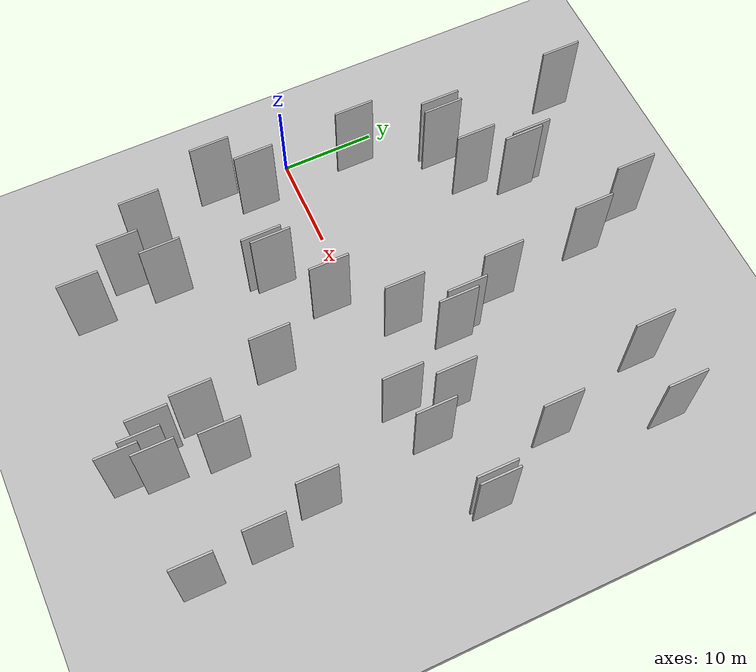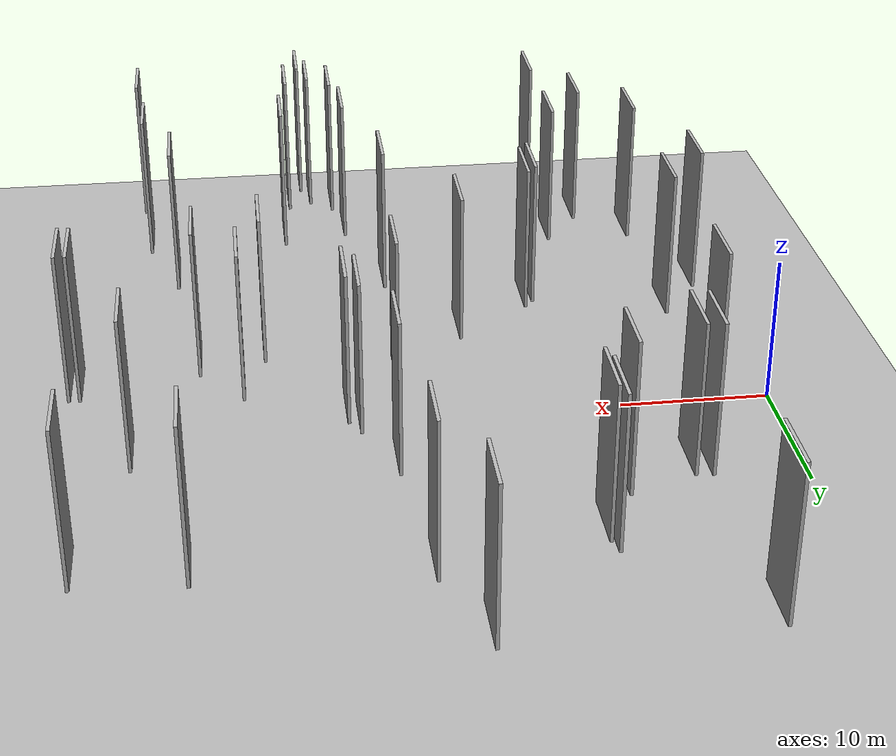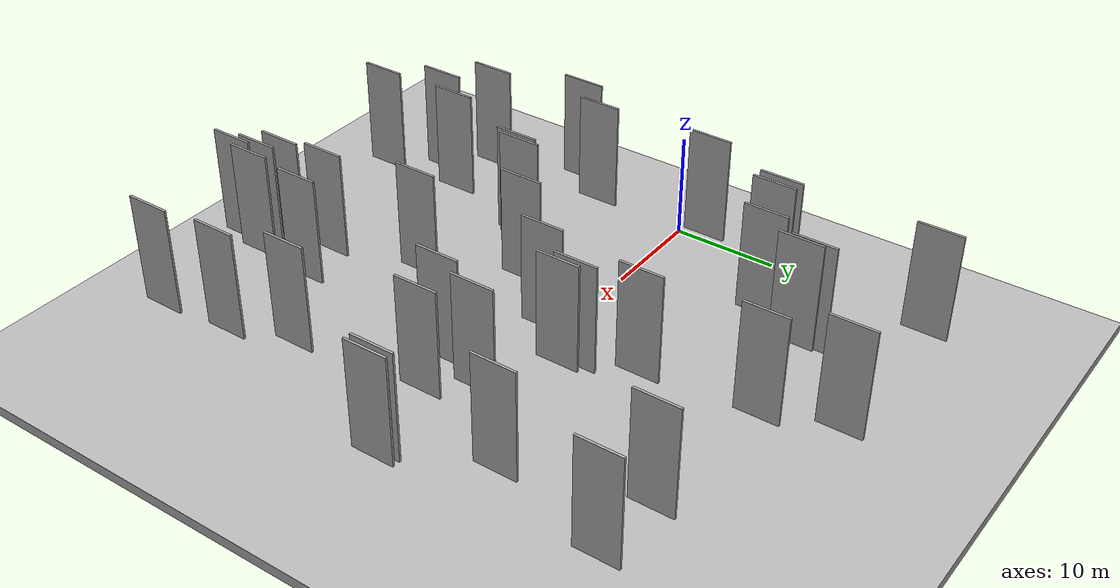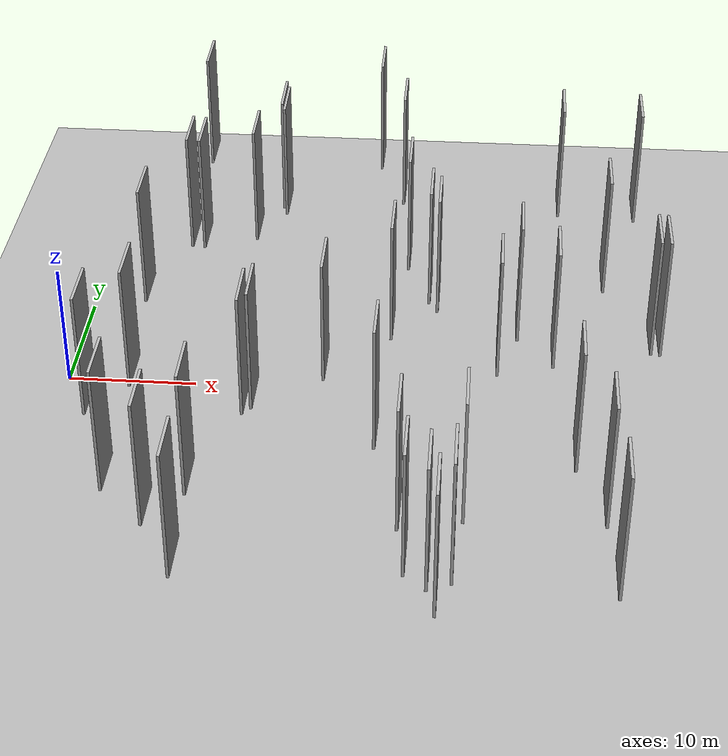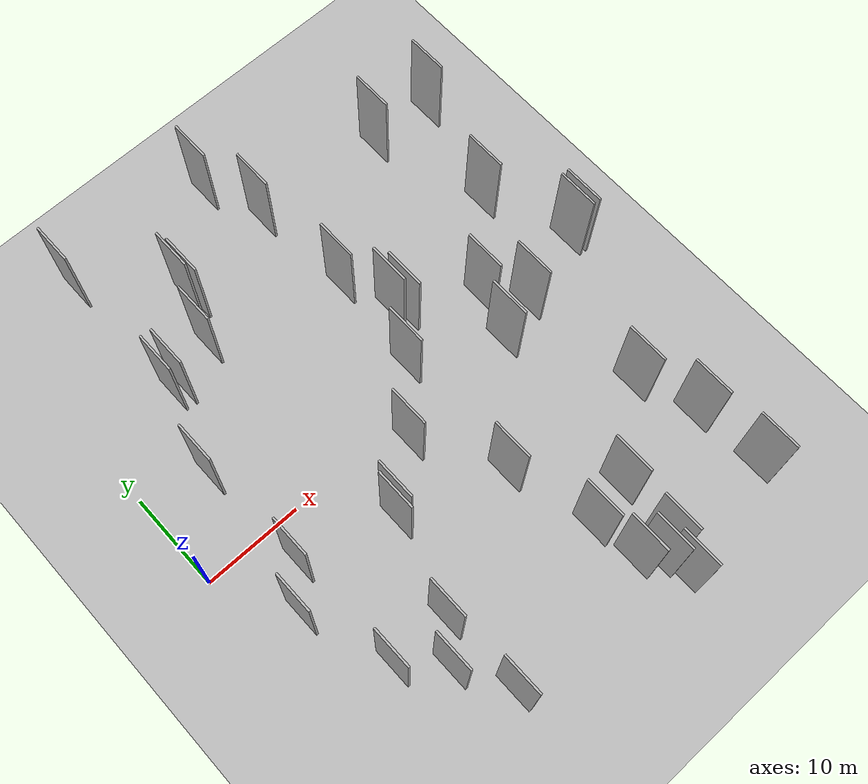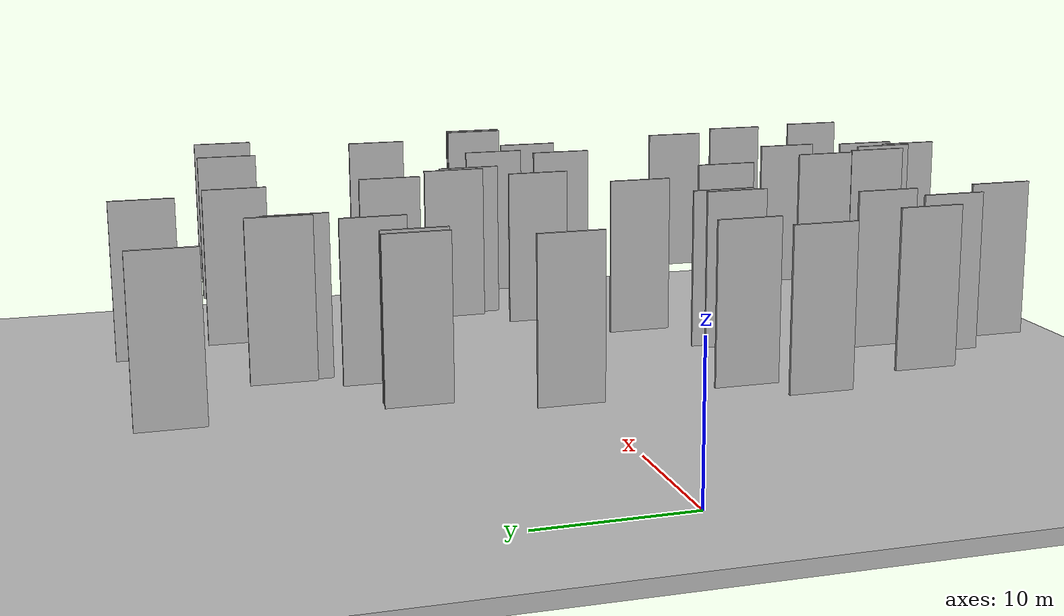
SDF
<?xml version="1.0" encoding="utf-8"?>

<sdf version="1.6">

   <world name="default">

      <gui fullscreen="0">

         <camera name="user_camera">

            <pose>-15 0 4.57585 0 0 0</pose>

            <view_controller>orbit</view_controller>

         </camera>

      </gui>

      <scene>

         <sky>

           <clouds>

             <speed>12</speed>

           </clouds>

         </sky>

         <ambient>0.4 0.4 0.4 1</ambient>

         <background>0.7 0.7 0.7 1</background>

         <shadows>1</shadows>

      </scene>

      <gravity>0 0 -9.8066</gravity>

      <magnetic_field>6e-06 2.3e-05 -4.2e-05</magnetic_field>

      <physics default="0" name="default_physics" type="ode">

         <ode>

            <solver>

               <type>quick</type>

               <iters>10</iters>

               <sor>1.0</sor>

               <use_dynamic_moi_rescaling>0</use_dynamic_moi_rescaling>

            </solver>

            <constraints>

               <cfm>0</cfm>

               <erp>0.2</erp>

               <contact_max_correcting_vel>100</contact_max_correcting_vel>

               <contact_surface_layer>0.001</contact_surface_layer>

            </constraints>

         </ode>

         <max_step_size>0.004</max_step_size>

         <real_time_factor>1</real_time_factor>

         <real_time_update_rate>250</real_time_update_rate>

      </physics>

      <light name="sun" type="directional">

         <cast_shadows>1</cast_shadows>

         <pose>0 0 10 0 0 0</pose>

         <diffuse>0.8 0.8 0.8 1</diffuse>

         <specular>0.2 0.2 0.2 1</specular>

         <attenuation>

            <range>1000</range>

            <constant>0.9</constant>

            <linear>0.01</linear>

            <quadratic>0.001</quadratic>

         </attenuation>

         <direction>-0.5 0.1 -0.9</direction>

      </light>

      <include>

         <name>ground_plane_1</name>

         <uri>model://HANNAS_ground_plane</uri>

         <pose>0 0 0  0 0 0</pose>

      </include>

      <include>

         <name>ground_plane_2</name>

         <uri>model://HANNAS_ground_plane</uri>

         <pose>100 0 0  0 0 0</pose>

      </include>

      <model name="HANNAS_wall_1">

         <static>1</static>

         <pose frame="">25.2401 2.0989 5.0 0.000000 0.000000 1.570796</pose>

         <link name="link">

            <pose frame="">0 0 5.00 0 0 0</pose>

            <collision name="collision">

               <geometry>

                  <box>

                     <size>4.00 0.2 10.00</size>

                  </box>

               </geometry>

               <max_contacts>10</max_contacts>

               <surface>

                  <contact>

                     <ode/>

                  </contact>

                  <bounce/>

                  <friction>

                     <torsional>

                        <ode/>

                     </torsional>

                     <ode/>

                  </friction>

               </surface>

            </collision>

            <visual name="visual">

               <cast_shadows>0</cast_shadows>

               <geometry>

                  <box>

                     <size>4.00 0.2 10.00</size>

                  </box>

               </geometry>

               <material>

                  <script>

                     <uri>model://HANNAS_wall/materials/scripts</uri>

                     <uri>model://HANNAS_wall/materials/textures</uri>

                     <name>vrc/HANNAS_wall</name>

                  </script>

               </material>

            </visual>

            <self_collide>0</self_collide>

            <enable_wind>0</enable_wind>

            <kinematic>0</kinematic>

         </link>

      </model>

      <model name="HANNAS_wall_2">

         <static>1</static>

         <pose frame="">9.9231 -20.2590 5.0 0.000000 0.000000 1.570796</pose>

         <link name="link">

            <pose frame="">0 0 5.00 0 0 0</pose>

            <collision name="collision">

               <geometry>

                  <box>

                     <size>4.00 0.2 10.00</size>

                  </box>

               </geometry>

               <max_contacts>10</max_contacts>

               <surface>

                  <contact>

                     <ode/>

                  </contact>

                  <bounce/>

                  <friction>

                     <torsional>

                        <ode/>

                     </torsional>

                     <ode/>

                  </friction>

               </surface>

            </collision>

            <visual name="visual">

               <cast_shadows>0</cast_shadows>

               <geometry>

                  <box>

                     <size>4.00 0.2 10.00</size>

                  </box>

               </geometry>

               <material>

                  <script>

                     <uri>model://HANNAS_wall/materials/scripts</uri>

                     <uri>model://HANNAS_wall/materials/textures</uri>

                     <name>vrc/HANNAS_wall</name>

                  </script>

               </material>

            </visual>

            <self_collide>0</self_collide>

            <enable_wind>0</enable_wind>

            <kinematic>0</kinematic>

         </link>

      </model>

      <model name="HANNAS_wall_3">

         <static>1</static>

         <pose frame="">28.6046 5.9898 5.0 0.000000 0.000000 1.570796</pose>

         <link name="link">

            <pose frame="">0 0 5.00 0 0 0</pose>

            <collision name="collision">

               <geometry>

                  <box>

                     <size>4.00 0.2 10.00</size>

                  </box>

               </geometry>

               <max_contacts>10</max_contacts>

               <surface>

                  <contact>

                     <ode/>

                  </contact>

                  <bounce/>

                  <friction>

                     <torsional>

                        <ode/>

                     </torsional>

                     <ode/>

                  </friction>

               </surface>

            </collision>

            <visual name="visual">

               <cast_shadows>0</cast_shadows>

               <geometry>

                  <box>

                     <size>4.00 0.2 10.00</size>

                  </box>

               </geometry>

               <material>

                  <script>

                     <uri>model://HANNAS_wall/materials/scripts</uri>

                     <uri>model://HANNAS_wall/materials/textures</uri>

                     <name>vrc/HANNAS_wall</name>

                  </script>

               </material>

            </visual>

            <self_collide>0</self_collide>

            <enable_wind>0</enable_wind>

            <kinematic>0</kinematic>

         </link>

      </model>

      <model name="HANNAS_wall_4">

         <static>1</static>

         <pose frame="">30.7053 -24.4381 5.0 0.000000 0.000000 1.570796</pose>

         <link name="link">

            <pose frame="">0 0 5.00 0 0 0</pose>

            <collision name="collision">

               <geometry>

                  <box>

                     <size>4.00 0.2 10.00</size>

                  </box>

               </geometry>

               <max_contacts>10</max_contacts>

               <surface>

                  <contact>

                     <ode/>

                  </contact>

                  <bounce/>

                  <friction>

                     <torsional>

                        <ode/>

                     </torsional>

                     <ode/>

                  </friction>

               </surface>

            </collision>

            <visual name="visual">

               <cast_shadows>0</cast_shadows>

               <geometry>

                  <box>

                     <size>4.00 0.2 10.00</size>

                  </box>

               </geometry>

               <material>

                  <script>

                     <uri>model://HANNAS_wall/materials/scripts</uri>

                     <uri>model://HANNAS_wall/materials/textures</uri>

                     <name>vrc/HANNAS_wall</name>

                  </script>

               </material>

            </visual>

            <self_collide>0</self_collide>

            <enable_wind>0</enable_wind>

            <kinematic>0</kinematic>

         </link>

      </model>

      <model name="HANNAS_wall_5">

         <static>1</static>

         <pose frame="">5.7284 5.8159 5.0 0.000000 0.000000 1.570796</pose>

         <link name="link">

            <pose frame="">0 0 5.00 0 0 0</pose>

            <collision name="collision">

               <geometry>

                  <box>

                     <size>4.00 0.2 10.00</size>

                  </box>

               </geometry>

               <max_contacts>10</max_contacts>

               <surface>

                  <contact>

                     <ode/>

                  </contact>

                  <bounce/>

                  <friction>

                     <torsional>

                        <ode/>

                     </torsional>

                     <ode/>

                  </friction>

               </surface>

            </collision>

            <visual name="visual">

               <cast_shadows>0</cast_shadows>

               <geometry>

                  <box>

                     <size>4.00 0.2 10.00</size>

                  </box>

               </geometry>

               <material>

                  <script>

                     <uri>model://HANNAS_wall/materials/scripts</uri>

                     <uri>model://HANNAS_wall/materials/textures</uri>

                     <name>vrc/HANNAS_wall</name>

                  </script>

               </material>

            </visual>

            <self_collide>0</self_collide>

            <enable_wind>0</enable_wind>

            <kinematic>0</kinematic>

         </link>

      </model>

      <model name="HANNAS_wall_6">

         <static>1</static>

         <pose frame="">20.5550 -3.4269 5.0 0.000000 0.000000 1.570796</pose>

         <link name="link">

            <pose frame="">0 0 5.00 0 0 0</pose>

            <collision name="collision">

               <geometry>

                  <box>

                     <size>4.00 0.2 10.00</size>

                  </box>

               </geometry>

               <max_contacts>10</max_contacts>

               <surface>

                  <contact>

                     <ode/>

                  </contact>

                  <bounce/>

                  <friction>

                     <torsional>

                        <ode/>

                     </torsional>

                     <ode/>

                  </friction>

               </surface>

            </collision>

            <visual name="visual">

               <cast_shadows>0</cast_shadows>

               <geometry>

                  <box>

                     <size>4.00 0.2 10.00</size>

                  </box>

               </geometry>

               <material>

                  <script>

                     <uri>model://HANNAS_wall/materials/scripts</uri>

                     <uri>model://HANNAS_wall/materials/textures</uri>

                     <name>vrc/HANNAS_wall</name>

                  </script>

               </material>

            </visual>

            <self_collide>0</self_collide>

            <enable_wind>0</enable_wind>

            <kinematic>0</kinematic>

         </link>

      </model>

      <model name="HANNAS_wall_7">

         <static>1</static>

         <pose frame="">6.4148 -5.1708 5.0 0.000000 0.000000 1.570796</pose>

         <link name="link">

            <pose frame="">0 0 5.00 0 0 0</pose>

            <collision name="collision">

               <geometry>

                  <box>

                     <size>4.00 0.2 10.00</size>

                  </box>

               </geometry>

               <max_contacts>10</max_contacts>

               <surface>

                  <contact>

                     <ode/>

                  </contact>

                  <bounce/>

                  <friction>

                     <torsional>

                        <ode/>

                     </torsional>

                     <ode/>

                  </friction>

               </surface>

            </collision>

            <visual name="visual">

               <cast_shadows>0</cast_shadows>

               <geometry>

                  <box>

                     <size>4.00 0.2 10.00</size>

                  </box>

               </geometry>

               <material>

                  <script>

                     <uri>model://HANNAS_wall/materials/scripts</uri>

                     <uri>model://HANNAS_wall/materials/textures</uri>

                     <name>vrc/HANNAS_wall</name>

                  </script>

               </material>

            </visual>

            <self_collide>0</self_collide>

            <enable_wind>0</enable_wind>

            <kinematic>0</kinematic>

         </link>

      </model>

      <model name="HANNAS_wall_8">

         <static>1</static>

         <pose frame="">7.8547 27.8381 5.0 0.000000 0.000000 1.570796</pose>

         <link name="link">

            <pose frame="">0 0 5.00 0 0 0</pose>

            <collision name="collision">

               <geometry>

                  <box>

                     <size>4.00 0.2 10.00</size>

                  </box>

               </geometry>

               <max_contacts>10</max_contacts>

               <surface>

                  <contact>

                     <ode/>

                  </contact>

                  <bounce/>

                  <friction>

                     <torsional>

                        <ode/>

                     </torsional>

                     <ode/>

                  </friction>

               </surface>

            </collision>

            <visual name="visual">

               <cast_shadows>0</cast_shadows>

               <geometry>

                  <box>

                     <size>4.00 0.2 10.00</size>

                  </box>

               </geometry>

               <material>

                  <script>

                     <uri>model://HANNAS_wall/materials/scripts</uri>

                     <uri>model://HANNAS_wall/materials/textures</uri>

                     <name>vrc/HANNAS_wall</name>

                  </script>

               </material>

            </visual>

            <self_collide>0</self_collide>

            <enable_wind>0</enable_wind>

            <kinematic>0</kinematic>

         </link>

      </model>

      <model name="HANNAS_wall_9">

         <static>1</static>

         <pose frame="">33.3533 -1.9351 5.0 0.000000 0.000000 1.570796</pose>

         <link name="link">

            <pose frame="">0 0 5.00 0 0 0</pose>

            <collision name="collision">

               <geometry>

                  <box>

                     <size>4.00 0.2 10.00</size>

                  </box>

               </geometry>

               <max_contacts>10</max_contacts>

               <surface>

                  <contact>

                     <ode/>

                  </contact>

                  <bounce/>

                  <friction>

                     <torsional>

                        <ode/>

                     </torsional>

                     <ode/>

                  </friction>

               </surface>

            </collision>

            <visual name="visual">

               <cast_shadows>0</cast_shadows>

               <geometry>

                  <box>

                     <size>4.00 0.2 10.00</size>

                  </box>

               </geometry>

               <material>

                  <script>

                     <uri>model://HANNAS_wall/materials/scripts</uri>

                     <uri>model://HANNAS_wall/materials/textures</uri>

                     <name>vrc/HANNAS_wall</name>

                  </script>

               </material>

            </visual>

            <self_collide>0</self_collide>

            <enable_wind>0</enable_wind>

            <kinematic>0</kinematic>

         </link>

      </model>

      <model name="HANNAS_wall_10">

         <static>1</static>

         <pose frame="">8.1811 14.0430 5.0 0.000000 0.000000 1.570796</pose>

         <link name="link">

            <pose frame="">0 0 5.00 0 0 0</pose>

            <collision name="collision">

               <geometry>

                  <box>

                     <size>4.00 0.2 10.00</size>

                  </box>

               </geometry>

               <max_contacts>10</max_contacts>

               <surface>

                  <contact>

                     <ode/>

                  </contact>

                  <bounce/>

                  <friction>

                     <torsional>

                        <ode/>

                     </torsional>

                     <ode/>

                  </friction>

               </surface>

            </collision>

            <visual name="visual">

               <cast_shadows>0</cast_shadows>

               <geometry>

                  <box>

                     <size>4.00 0.2 10.00</size>

                  </box>

               </geometry>

               <material>

                  <script>

                     <uri>model://HANNAS_wall/materials/scripts</uri>

                     <uri>model://HANNAS_wall/materials/textures</uri>

                     <name>vrc/HANNAS_wall</name>

                  </script>

               </material>

            </visual>

            <self_collide>0</self_collide>

            <enable_wind>0</enable_wind>

            <kinematic>0</kinematic>

         </link>

      </model>

      <model name="HANNAS_wall_11">

         <static>1</static>

         <pose frame="">44.5059 20.5372 5.0 0.000000 0.000000 1.570796</pose>

         <link name="link">

            <pose frame="">0 0 5.00 0 0 0</pose>

            <collision name="collision">

               <geometry>

                  <box>

                     <size>4.00 0.2 10.00</size>

                  </box>

               </geometry>

               <max_contacts>10</max_contacts>

               <surface>

                  <contact>

                     <ode/>

                  </contact>

                  <bounce/>

                  <friction>

                     <torsional>

                        <ode/>

                     </torsional>

                     <ode/>

                  </friction>

               </surface>

            </collision>

            <visual name="visual">

               <cast_shadows>0</cast_shadows>

               <geometry>

                  <box>

                     <size>4.00 0.2 10.00</size>

                  </box>

               </geometry>

               <material>

                  <script>

                     <uri>model://HANNAS_wall/materials/scripts</uri>

                     <uri>model://HANNAS_wall/materials/textures</uri>

                     <name>vrc/HANNAS_wall</name>

                  </script>

               </material>

            </visual>

            <self_collide>0</self_collide>

            <enable_wind>0</enable_wind>

            <kinematic>0</kinematic>

         </link>

      </model>

      <model name="HANNAS_wall_12">

         <static>1</static>

         <pose frame="">40.8298 -18.2750 5.0 0.000000 0.000000 1.570796</pose>

         <link name="link">

            <pose frame="">0 0 5.00 0 0 0</pose>

            <collision name="collision">

               <geometry>

                  <box>

                     <size>4.00 0.2 10.00</size>

                  </box>

               </geometry>

               <max_contacts>10</max_contacts>

               <surface>

                  <contact>

                     <ode/>

                  </contact>

                  <bounce/>

                  <friction>

                     <torsional>

                        <ode/>

                     </torsional>

                     <ode/>

                  </friction>

               </surface>

            </collision>

            <visual name="visual">

               <cast_shadows>0</cast_shadows>

               <geometry>

                  <box>

                     <size>4.00 0.2 10.00</size>

                  </box>

               </geometry>

               <material>

                  <script>

                     <uri>model://HANNAS_wall/materials/scripts</uri>

                     <uri>model://HANNAS_wall/materials/textures</uri>

                     <name>vrc/HANNAS_wall</name>

                  </script>

               </material>

            </visual>

            <self_collide>0</self_collide>

            <enable_wind>0</enable_wind>

            <kinematic>0</kinematic>

         </link>

      </model>

      <model name="HANNAS_wall_13">

         <static>1</static>

         <pose frame="">15.3725 19.6730 5.0 0.000000 0.000000 1.570796</pose>

         <link name="link">

            <pose frame="">0 0 5.00 0 0 0</pose>

            <collision name="collision">

               <geometry>

                  <box>

                     <size>4.00 0.2 10.00</size>

                  </box>

               </geometry>

               <max_contacts>10</max_contacts>

               <surface>

                  <contact>

                     <ode/>

                  </contact>

                  <bounce/>

                  <friction>

                     <torsional>

                        <ode/>

                     </torsional>

                     <ode/>

                  </friction>

               </surface>

            </collision>

            <visual name="visual">

               <cast_shadows>0</cast_shadows>

               <geometry>

                  <box>

                     <size>4.00 0.2 10.00</size>

                  </box>

               </geometry>

               <material>

                  <script>

                     <uri>model://HANNAS_wall/materials/scripts</uri>

                     <uri>model://HANNAS_wall/materials/textures</uri>

                     <name>vrc/HANNAS_wall</name>

                  </script>

               </material>

            </visual>

            <self_collide>0</self_collide>

            <enable_wind>0</enable_wind>

            <kinematic>0</kinematic>

         </link>

      </model>

      <model name="HANNAS_wall_14">

         <static>1</static>

         <pose frame="">22.8901 27.8408 5.0 0.000000 0.000000 1.570796</pose>

         <link name="link">

            <pose frame="">0 0 5.00 0 0 0</pose>

            <collision name="collision">

               <geometry>

                  <box>

                     <size>4.00 0.2 10.00</size>

                  </box>

               </geometry>

               <max_contacts>10</max_contacts>

               <surface>

                  <contact>

                     <ode/>

                  </contact>

                  <bounce/>

                  <friction>

                     <torsional>

                        <ode/>

                     </torsional>

                     <ode/>

                  </friction>

               </surface>

            </collision>

            <visual name="visual">

               <cast_shadows>0</cast_shadows>

               <geometry>

                  <box>

                     <size>4.00 0.2 10.00</size>

                  </box>

               </geometry>

               <material>

                  <script>

                     <uri>model://HANNAS_wall/materials/scripts</uri>

                     <uri>model://HANNAS_wall/materials/textures</uri>

                     <name>vrc/HANNAS_wall</name>

                  </script>

               </material>

            </visual>

            <self_collide>0</self_collide>

            <enable_wind>0</enable_wind>

            <kinematic>0</kinematic>

         </link>

      </model>

      <model name="HANNAS_wall_15">

         <static>1</static>

         <pose frame="">15.0870 -7.9420 5.0 0.000000 0.000000 1.570796</pose>

         <link name="link">

            <pose frame="">0 0 5.00 0 0 0</pose>

            <collision name="collision">

               <geometry>

                  <box>

                     <size>4.00 0.2 10.00</size>

                  </box>

               </geometry>

               <max_contacts>10</max_contacts>

               <surface>

                  <contact>

                     <ode/>

                  </contact>

                  <bounce/>

                  <friction>

                     <torsional>

                        <ode/>

                     </torsional>

                     <ode/>

                  </friction>

               </surface>

            </collision>

            <visual name="visual">

               <cast_shadows>0</cast_shadows>

               <geometry>

                  <box>

                     <size>4.00 0.2 10.00</size>

                  </box>

               </geometry>

               <material>

                  <script>

                     <uri>model://HANNAS_wall/materials/scripts</uri>

                     <uri>model://HANNAS_wall/materials/textures</uri>

                     <name>vrc/HANNAS_wall</name>

                  </script>

               </material>

            </visual>

            <self_collide>0</self_collide>

            <enable_wind>0</enable_wind>

            <kinematic>0</kinematic>

         </link>

      </model>

      <model name="HANNAS_wall_16">

         <static>1</static>

         <pose frame="">34.8203 2.6107 5.0 0.000000 0.000000 1.570796</pose>

         <link name="link">

            <pose frame="">0 0 5.00 0 0 0</pose>

            <collision name="collision">

               <geometry>

                  <box>

                     <size>4.00 0.2 10.00</size>

                  </box>

               </geometry>

               <max_contacts>10</max_contacts>

               <surface>

                  <contact>

                     <ode/>

                  </contact>

                  <bounce/>

                  <friction>

                     <torsional>

                        <ode/>

                     </torsional>

                     <ode/>

                  </friction>

               </surface>

            </collision>

            <visual name="visual">

               <cast_shadows>0</cast_shadows>

               <geometry>

                  <box>

                     <size>4.00 0.2 10.00</size>

                  </box>

               </geometry>

               <material>

                  <script>

                     <uri>model://HANNAS_wall/materials/scripts</uri>

                     <uri>model://HANNAS_wall/materials/textures</uri>

                     <name>vrc/HANNAS_wall</name>

                  </script>

               </material>

            </visual>

            <self_collide>0</self_collide>

            <enable_wind>0</enable_wind>

            <kinematic>0</kinematic>

         </link>

      </model>

      <model name="HANNAS_wall_17">

         <static>1</static>

         <pose frame="">27.5722 -23.8643 5.0 0.000000 0.000000 1.570796</pose>

         <link name="link">

            <pose frame="">0 0 5.00 0 0 0</pose>

            <collision name="collision">

               <geometry>

                  <box>

                     <size>4.00 0.2 10.00</size>

                  </box>

               </geometry>

               <max_contacts>10</max_contacts>

               <surface>

                  <contact>

                     <ode/>

                  </contact>

                  <bounce/>

                  <friction>

                     <torsional>

                        <ode/>

                     </torsional>

                     <ode/>

                  </friction>

               </surface>

            </collision>

            <visual name="visual">

               <cast_shadows>0</cast_shadows>

               <geometry>

                  <box>

                     <size>4.00 0.2 10.00</size>

                  </box>

               </geometry>

               <material>

                  <script>

                     <uri>model://HANNAS_wall/materials/scripts</uri>

                     <uri>model://HANNAS_wall/materials/textures</uri>

                     <name>vrc/HANNAS_wall</name>

                  </script>

               </material>

            </visual>

            <self_collide>0</self_collide>

            <enable_wind>0</enable_wind>

            <kinematic>0</kinematic>

         </link>

      </model>

      <model name="HANNAS_wall_18">

         <static>1</static>

         <pose frame="">6.5793 -16.9391 5.0 0.000000 0.000000 1.570796</pose>

         <link name="link">

            <pose frame="">0 0 5.00 0 0 0</pose>

            <collision name="collision">

               <geometry>

                  <box>

                     <size>4.00 0.2 10.00</size>

                  </box>

               </geometry>

               <max_contacts>10</max_contacts>

               <surface>

                  <contact>

                     <ode/>

                  </contact>

                  <bounce/>

                  <friction>

                     <torsional>

                        <ode/>

                     </torsional>

                     <ode/>

                  </friction>

               </surface>

            </collision>

            <visual name="visual">

               <cast_shadows>0</cast_shadows>

               <geometry>

                  <box>

                     <size>4.00 0.2 10.00</size>

                  </box>

               </geometry>

               <material>

                  <script>

                     <uri>model://HANNAS_wall/materials/scripts</uri>

                     <uri>model://HANNAS_wall/materials/textures</uri>

                     <name>vrc/HANNAS_wall</name>

                  </script>

               </material>

            </visual>

            <self_collide>0</self_collide>

            <enable_wind>0</enable_wind>

            <kinematic>0</kinematic>

         </link>

      </model>

      <model name="HANNAS_wall_19">

         <static>1</static>

         <pose frame="">41.5627 9.7166 5.0 0.000000 0.000000 1.570796</pose>

         <link name="link">

            <pose frame="">0 0 5.00 0 0 0</pose>

            <collision name="collision">

               <geometry>

                  <box>

                     <size>4.00 0.2 10.00</size>

                  </box>

               </geometry>

               <max_contacts>10</max_contacts>

               <surface>

                  <contact>

                     <ode/>

                  </contact>

                  <bounce/>

                  <friction>

                     <torsional>

                        <ode/>

                     </torsional>

                     <ode/>

                  </friction>

               </surface>

            </collision>

            <visual name="visual">

               <cast_shadows>0</cast_shadows>

               <geometry>

                  <box>

                     <size>4.00 0.2 10.00</size>

                  </box>

               </geometry>

               <material>

                  <script>

                     <uri>model://HANNAS_wall/materials/scripts</uri>

                     <uri>model://HANNAS_wall/materials/textures</uri>

                     <name>vrc/HANNAS_wall</name>

                  </script>

               </material>

            </visual>

            <self_collide>0</self_collide>

            <enable_wind>0</enable_wind>

            <kinematic>0</kinematic>

         </link>

      </model>

      <model name="HANNAS_wall_20">

         <static>1</static>

         <pose frame="">29.1157 -25.1075 5.0 0.000000 0.000000 1.570796</pose>

         <link name="link">

            <pose frame="">0 0 5.00 0 0 0</pose>

            <collision name="collision">

               <geometry>

                  <box>

                     <size>4.00 0.2 10.00</size>

                  </box>

               </geometry>

               <max_contacts>10</max_contacts>

               <surface>

                  <contact>

                     <ode/>

                  </contact>

                  <bounce/>

                  <friction>

                     <torsional>

                        <ode/>

                     </torsional>

                     <ode/>

                  </friction>

               </surface>

            </collision>

            <visual name="visual">

               <cast_shadows>0</cast_shadows>

               <geometry>

                  <box>

                     <size>4.00 0.2 10.00</size>

                  </box>

               </geometry>

               <material>

                  <script>

                     <uri>model://HANNAS_wall/materials/scripts</uri>

                     <uri>model://HANNAS_wall/materials/textures</uri>

                     <name>vrc/HANNAS_wall</name>

                  </script>

               </material>

            </visual>

            <self_collide>0</self_collide>

            <enable_wind>0</enable_wind>

            <kinematic>0</kinematic>

         </link>

      </model>

      <model name="HANNAS_wall_21">

         <static>1</static>

         <pose frame="">24.8374 -11.1464 5.0 0.000000 0.000000 1.570796</pose>

         <link name="link">

            <pose frame="">0 0 5.00 0 0 0</pose>

            <collision name="collision">

               <geometry>

                  <box>

                     <size>4.00 0.2 10.00</size>

                  </box>

               </geometry>

               <max_contacts>10</max_contacts>

               <surface>

                  <contact>

                     <ode/>

                  </contact>

                  <bounce/>

                  <friction>

                     <torsional>

                        <ode/>

                     </torsional>

                     <ode/>

                  </friction>

               </surface>

            </collision>

            <visual name="visual">

               <cast_shadows>0</cast_shadows>

               <geometry>

                  <box>

                     <size>4.00 0.2 10.00</size>

                  </box>

               </geometry>

               <material>

                  <script>

                     <uri>model://HANNAS_wall/materials/scripts</uri>

                     <uri>model://HANNAS_wall/materials/textures</uri>

                     <name>vrc/HANNAS_wall</name>

                  </script>

               </material>

            </visual>

            <self_collide>0</self_collide>

            <enable_wind>0</enable_wind>

            <kinematic>0</kinematic>

         </link>

      </model>

      <model name="HANNAS_wall_22">

         <static>1</static>

         <pose frame="">13.3433 15.4557 5.0 0.000000 0.000000 1.570796</pose>

         <link name="link">

            <pose frame="">0 0 5.00 0 0 0</pose>

            <collision name="collision">

               <geometry>

                  <box>

                     <size>4.00 0.2 10.00</size>

                  </box>

               </geometry>

               <max_contacts>10</max_contacts>

               <surface>

                  <contact>

                     <ode/>

                  </contact>

                  <bounce/>

                  <friction>

                     <torsional>

                        <ode/>

                     </torsional>

                     <ode/>

                  </friction>

               </surface>

            </collision>

            <visual name="visual">

               <cast_shadows>0</cast_shadows>

               <geometry>

                  <box>

                     <size>4.00 0.2 10.00</size>

                  </box>

               </geometry>

               <material>

                  <script>

                     <uri>model://HANNAS_wall/materials/scripts</uri>

                     <uri>model://HANNAS_wall/materials/textures</uri>

                     <name>vrc/HANNAS_wall</name>

                  </script>

               </material>

            </visual>

            <self_collide>0</self_collide>

            <enable_wind>0</enable_wind>

            <kinematic>0</kinematic>

         </link>

      </model>

      <model name="HANNAS_wall_23">

         <static>1</static>

         <pose frame="">41.3781 -25.0281 5.0 0.000000 0.000000 1.570796</pose>

         <link name="link">

            <pose frame="">0 0 5.00 0 0 0</pose>

            <collision name="collision">

               <geometry>

                  <box>

                     <size>4.00 0.2 10.00</size>

                  </box>

               </geometry>

               <max_contacts>10</max_contacts>

               <surface>

                  <contact>

                     <ode/>

                  </contact>

                  <bounce/>

                  <friction>

                     <torsional>

                        <ode/>

                     </torsional>

                     <ode/>

                  </friction>

               </surface>

            </collision>

            <visual name="visual">

               <cast_shadows>0</cast_shadows>

               <geometry>

                  <box>

                     <size>4.00 0.2 10.00</size>

                  </box>

               </geometry>

               <material>

                  <script>

                     <uri>model://HANNAS_wall/materials/scripts</uri>

                     <uri>model://HANNAS_wall/materials/textures</uri>

                     <name>vrc/HANNAS_wall</name>

                  </script>

               </material>

            </visual>

            <self_collide>0</self_collide>

            <enable_wind>0</enable_wind>

            <kinematic>0</kinematic>

         </link>

      </model>

      <model name="HANNAS_wall_24">

         <static>1</static>

         <pose frame="">26.9352 -19.5245 5.0 0.000000 0.000000 1.570796</pose>

         <link name="link">

            <pose frame="">0 0 5.00 0 0 0</pose>

            <collision name="collision">

               <geometry>

                  <box>

                     <size>4.00 0.2 10.00</size>

                  </box>

               </geometry>

               <max_contacts>10</max_contacts>

               <surface>

                  <contact>

                     <ode/>

                  </contact>

                  <bounce/>

                  <friction>

                     <torsional>

                        <ode/>

                     </torsional>

                     <ode/>

                  </friction>

               </surface>

            </collision>

            <visual name="visual">

               <cast_shadows>0</cast_shadows>

               <geometry>

                  <box>

                     <size>4.00 0.2 10.00</size>

                  </box>

               </geometry>

               <material>

                  <script>

                     <uri>model://HANNAS_wall/materials/scripts</uri>

                     <uri>model://HANNAS_wall/materials/textures</uri>

                     <name>vrc/HANNAS_wall</name>

                  </script>

               </material>

            </visual>

            <self_collide>0</self_collide>

            <enable_wind>0</enable_wind>

            <kinematic>0</kinematic>

         </link>

      </model>

      <model name="HANNAS_wall_25">

         <static>1</static>

         <pose frame="">45.5415 1.4678 5.0 0.000000 0.000000 1.570796</pose>

         <link name="link">

            <pose frame="">0 0 5.00 0 0 0</pose>

            <collision name="collision">

               <geometry>

                  <box>

                     <size>4.00 0.2 10.00</size>

                  </box>

               </geometry>

               <max_contacts>10</max_contacts>

               <surface>

                  <contact>

                     <ode/>

                  </contact>

                  <bounce/>

                  <friction>

                     <torsional>

                        <ode/>

                     </torsional>

                     <ode/>

                  </friction>

               </surface>

            </collision>

            <visual name="visual">

               <cast_shadows>0</cast_shadows>

               <geometry>

                  <box>

                     <size>4.00 0.2 10.00</size>

                  </box>

               </geometry>

               <material>

                  <script>

                     <uri>model://HANNAS_wall/materials/scripts</uri>

                     <uri>model://HANNAS_wall/materials/textures</uri>

                     <name>vrc/HANNAS_wall</name>

                  </script>

               </material>

            </visual>

            <self_collide>0</self_collide>

            <enable_wind>0</enable_wind>

            <kinematic>0</kinematic>

         </link>

      </model>

      <model name="HANNAS_wall_26">

         <static>1</static>

         <pose frame="">26.0697 11.8986 5.0 0.000000 0.000000 1.570796</pose>

         <link name="link">

            <pose frame="">0 0 5.00 0 0 0</pose>

            <collision name="collision">

               <geometry>

                  <box>

                     <size>4.00 0.2 10.00</size>

                  </box>

               </geometry>

               <max_contacts>10</max_contacts>

               <surface>

                  <contact>

                     <ode/>

                  </contact>

                  <bounce/>

                  <friction>

                     <torsional>

                        <ode/>

                     </torsional>

                     <ode/>

                  </friction>

               </surface>

            </collision>

            <visual name="visual">

               <cast_shadows>0</cast_shadows>

               <geometry>

                  <box>

                     <size>4.00 0.2 10.00</size>

                  </box>

               </geometry>

               <material>

                  <script>

                     <uri>model://HANNAS_wall/materials/scripts</uri>

                     <uri>model://HANNAS_wall/materials/textures</uri>

                     <name>vrc/HANNAS_wall</name>

                  </script>

               </material>

            </visual>

            <self_collide>0</self_collide>

            <enable_wind>0</enable_wind>

            <kinematic>0</kinematic>

         </link>

      </model>

      <model name="HANNAS_wall_27">

         <static>1</static>

         <pose frame="">38.2055 20.9497 5.0 0.000000 0.000000 1.570796</pose>

         <link name="link">

            <pose frame="">0 0 5.00 0 0 0</pose>

            <collision name="collision">

               <geometry>

                  <box>

                     <size>4.00 0.2 10.00</size>

                  </box>

               </geometry>

               <max_contacts>10</max_contacts>

               <surface>

                  <contact>

                     <ode/>

                  </contact>

                  <bounce/>

                  <friction>

                     <torsional>

                        <ode/>

                     </torsional>

                     <ode/>

                  </friction>

               </surface>

            </collision>

            <visual name="visual">

               <cast_shadows>0</cast_shadows>

               <geometry>

                  <box>

                     <size>4.00 0.2 10.00</size>

                  </box>

               </geometry>

               <material>

                  <script>

                     <uri>model://HANNAS_wall/materials/scripts</uri>

                     <uri>model://HANNAS_wall/materials/textures</uri>

                     <name>vrc/HANNAS_wall</name>

                  </script>

               </material>

            </visual>

            <self_collide>0</self_collide>

            <enable_wind>0</enable_wind>

            <kinematic>0</kinematic>

         </link>

      </model>

      <model name="HANNAS_wall_28">

         <static>1</static>

         <pose frame="">29.7336 -27.4060 5.0 0.000000 0.000000 1.570796</pose>

         <link name="link">

            <pose frame="">0 0 5.00 0 0 0</pose>

            <collision name="collision">

               <geometry>

                  <box>

                     <size>4.00 0.2 10.00</size>

                  </box>

               </geometry>

               <max_contacts>10</max_contacts>

               <surface>

                  <contact>

                     <ode/>

                  </contact>

                  <bounce/>

                  <friction>

                     <torsional>

                        <ode/>

                     </torsional>

                     <ode/>

                  </friction>

               </surface>

            </collision>

            <visual name="visual">

               <cast_shadows>0</cast_shadows>

               <geometry>

                  <box>

                     <size>4.00 0.2 10.00</size>

                  </box>

               </geometry>

               <material>

                  <script>

                     <uri>model://HANNAS_wall/materials/scripts</uri>

                     <uri>model://HANNAS_wall/materials/textures</uri>

                     <name>vrc/HANNAS_wall</name>

                  </script>

               </material>

            </visual>

            <self_collide>0</self_collide>

            <enable_wind>0</enable_wind>

            <kinematic>0</kinematic>

         </link>

      </model>

      <model name="HANNAS_wall_29">

         <static>1</static>

         <pose frame="">12.5577 -25.0535 5.0 0.000000 0.000000 1.570796</pose>

         <link name="link">

            <pose frame="">0 0 5.00 0 0 0</pose>

            <collision name="collision">

               <geometry>

                  <box>

                     <size>4.00 0.2 10.00</size>

                  </box>

               </geometry>

               <max_contacts>10</max_contacts>

               <surface>

                  <contact>

                     <ode/>

                  </contact>

                  <bounce/>

                  <friction>

                     <torsional>

                        <ode/>

                     </torsional>

                     <ode/>

                  </friction>

               </surface>

            </collision>

            <visual name="visual">

               <cast_shadows>0</cast_shadows>

               <geometry>

                  <box>

                     <size>4.00 0.2 10.00</size>

                  </box>

               </geometry>

               <material>

                  <script>

                     <uri>model://HANNAS_wall/materials/scripts</uri>

                     <uri>model://HANNAS_wall/materials/textures</uri>

                     <name>vrc/HANNAS_wall</name>

                  </script>

               </material>

            </visual>

            <self_collide>0</self_collide>

            <enable_wind>0</enable_wind>

            <kinematic>0</kinematic>

         </link>

      </model>

      <model name="HANNAS_wall_30">

         <static>1</static>

         <pose frame="">25.1216 21.9988 5.0 0.000000 0.000000 1.570796</pose>

         <link name="link">

            <pose frame="">0 0 5.00 0 0 0</pose>

            <collision name="collision">

               <geometry>

                  <box>

                     <size>4.00 0.2 10.00</size>

                  </box>

               </geometry>

               <max_contacts>10</max_contacts>

               <surface>

                  <contact>

                     <ode/>

                  </contact>

                  <bounce/>

                  <friction>

                     <torsional>

                        <ode/>

                     </torsional>

                     <ode/>

                  </friction>

               </surface>

            </collision>

            <visual name="visual">

               <cast_shadows>0</cast_shadows>

               <geometry>

                  <box>

                     <size>4.00 0.2 10.00</size>

                  </box>

               </geometry>

               <material>

                  <script>

                     <uri>model://HANNAS_wall/materials/scripts</uri>

                     <uri>model://HANNAS_wall/materials/textures</uri>

                     <name>vrc/HANNAS_wall</name>

                  </script>

               </material>

            </visual>

            <self_collide>0</self_collide>

            <enable_wind>0</enable_wind>

            <kinematic>0</kinematic>

         </link>

      </model>

      <model name="HANNAS_wall_31">

         <static>1</static>

         <pose frame="">27.9239 7.1707 5.0 0.000000 0.000000 1.570796</pose>

         <link name="link">

            <pose frame="">0 0 5.00 0 0 0</pose>

            <collision name="collision">

               <geometry>

                  <box>

                     <size>4.00 0.2 10.00</size>

                  </box>

               </geometry>

               <max_contacts>10</max_contacts>

               <surface>

                  <contact>

                     <ode/>

                  </contact>

                  <bounce/>

                  <friction>

                     <torsional>

                        <ode/>

                     </torsional>

                     <ode/>

                  </friction>

               </surface>

            </collision>

            <visual name="visual">

               <cast_shadows>0</cast_shadows>

               <geometry>

                  <box>

                     <size>4.00 0.2 10.00</size>

                  </box>

               </geometry>

               <material>

                  <script>

                     <uri>model://HANNAS_wall/materials/scripts</uri>

                     <uri>model://HANNAS_wall/materials/textures</uri>

                     <name>vrc/HANNAS_wall</name>

                  </script>

               </material>

            </visual>

            <self_collide>0</self_collide>

            <enable_wind>0</enable_wind>

            <kinematic>0</kinematic>

         </link>

      </model>

      <model name="HANNAS_wall_32">

         <static>1</static>

         <pose frame="">9.2046 13.9225 5.0 0.000000 0.000000 1.570796</pose>

         <link name="link">

            <pose frame="">0 0 5.00 0 0 0</pose>

            <collision name="collision">

               <geometry>

                  <box>

                     <size>4.00 0.2 10.00</size>

                  </box>

               </geometry>

               <max_contacts>10</max_contacts>

               <surface>

                  <contact>

                     <ode/>

                  </contact>

                  <bounce/>

                  <friction>

                     <torsional>

                        <ode/>

                     </torsional>

                     <ode/>

                  </friction>

               </surface>

            </collision>

            <visual name="visual">

               <cast_shadows>0</cast_shadows>

               <geometry>

                  <box>

                     <size>4.00 0.2 10.00</size>

                  </box>

               </geometry>

               <material>

                  <script>

                     <uri>model://HANNAS_wall/materials/scripts</uri>

                     <uri>model://HANNAS_wall/materials/textures</uri>

                     <name>vrc/HANNAS_wall</name>

                  </script>

               </material>

            </visual>

            <self_collide>0</self_collide>

            <enable_wind>0</enable_wind>

            <kinematic>0</kinematic>

         </link>

      </model>

      <model name="HANNAS_wall_33">

         <static>1</static>

         <pose frame="">15.0684 20.6517 5.0 0.000000 0.000000 1.570796</pose>

         <link name="link">

            <pose frame="">0 0 5.00 0 0 0</pose>

            <collision name="collision">

               <geometry>

                  <box>

                     <size>4.00 0.2 10.00</size>

                  </box>

               </geometry>

               <max_contacts>10</max_contacts>

               <surface>

                  <contact>

                     <ode/>

                  </contact>

                  <bounce/>

                  <friction>

                     <torsional>

                        <ode/>

                     </torsional>

                     <ode/>

                  </friction>

               </surface>

            </collision>

            <visual name="visual">

               <cast_shadows>0</cast_shadows>

               <geometry>

                  <box>

                     <size>4.00 0.2 10.00</size>

                  </box>

               </geometry>

               <material>

                  <script>

                     <uri>model://HANNAS_wall/materials/scripts</uri>

                     <uri>model://HANNAS_wall/materials/textures</uri>

                     <name>vrc/HANNAS_wall</name>

                  </script>

               </material>

            </visual>

            <self_collide>0</self_collide>

            <enable_wind>0</enable_wind>

            <kinematic>0</kinematic>

         </link>

      </model>

      <model name="HANNAS_wall_34">

         <static>1</static>

         <pose frame="">37.4914 -0.6509 5.0 0.000000 0.000000 1.570796</pose>

         <link name="link">

            <pose frame="">0 0 5.00 0 0 0</pose>

            <collision name="collision">

               <geometry>

                  <box>

                     <size>4.00 0.2 10.00</size>

                  </box>

               </geometry>

               <max_contacts>10</max_contacts>

               <surface>

                  <contact>

                     <ode/>

                  </contact>

                  <bounce/>

                  <friction>

                     <torsional>

                        <ode/>

                     </torsional>

                     <ode/>

                  </friction>

               </surface>

            </collision>

            <visual name="visual">

               <cast_shadows>0</cast_shadows>

               <geometry>

                  <box>

                     <size>4.00 0.2 10.00</size>

                  </box>

               </geometry>

               <material>

                  <script>

                     <uri>model://HANNAS_wall/materials/scripts</uri>

                     <uri>model://HANNAS_wall/materials/textures</uri>

                     <name>vrc/HANNAS_wall</name>

                  </script>

               </material>

            </visual>

            <self_collide>0</self_collide>

            <enable_wind>0</enable_wind>

            <kinematic>0</kinematic>

         </link>

      </model>

      <model name="HANNAS_wall_35">

         <static>1</static>

         <pose frame="">44.8635 1.5210 5.0 0.000000 0.000000 1.570796</pose>

         <link name="link">

            <pose frame="">0 0 5.00 0 0 0</pose>

            <collision name="collision">

               <geometry>

                  <box>

                     <size>4.00 0.2 10.00</size>

                  </box>

               </geometry>

               <max_contacts>10</max_contacts>

               <surface>

                  <contact>

                     <ode/>

                  </contact>

                  <bounce/>

                  <friction>

                     <torsional>

                        <ode/>

                     </torsional>

                     <ode/>

                  </friction>

               </surface>

            </collision>

            <visual name="visual">

               <cast_shadows>0</cast_shadows>

               <geometry>

                  <box>

                     <size>4.00 0.2 10.00</size>

                  </box>

               </geometry>

               <material>

                  <script>

                     <uri>model://HANNAS_wall/materials/scripts</uri>

                     <uri>model://HANNAS_wall/materials/textures</uri>

                     <name>vrc/HANNAS_wall</name>

                  </script>

               </material>

            </visual>

            <self_collide>0</self_collide>

            <enable_wind>0</enable_wind>

            <kinematic>0</kinematic>

         </link>

      </model>

      <model name="HANNAS_wall_36">

         <static>1</static>

         <pose frame="">12.3550 -16.9913 5.0 0.000000 0.000000 1.570796</pose>

         <link name="link">

            <pose frame="">0 0 5.00 0 0 0</pose>

            <collision name="collision">

               <geometry>

                  <box>

                     <size>4.00 0.2 10.00</size>

                  </box>

               </geometry>

               <max_contacts>10</max_contacts>

               <surface>

                  <contact>

                     <ode/>

                  </contact>

                  <bounce/>

                  <friction>

                     <torsional>

                        <ode/>

                     </torsional>

                     <ode/>

                  </friction>

               </surface>

            </collision>

            <visual name="visual">

               <cast_shadows>0</cast_shadows>

               <geometry>

                  <box>

                     <size>4.00 0.2 10.00</size>

                  </box>

               </geometry>

               <material>

                  <script>

                     <uri>model://HANNAS_wall/materials/scripts</uri>

                     <uri>model://HANNAS_wall/materials/textures</uri>

                     <name>vrc/HANNAS_wall</name>

                  </script>

               </material>

            </visual>

            <self_collide>0</self_collide>

            <enable_wind>0</enable_wind>

            <kinematic>0</kinematic>

         </link>

      </model>

      <model name="HANNAS_wall_37">

         <static>1</static>

         <pose frame="">3.7608 -8.7176 5.0 0.000000 0.000000 1.570796</pose>

         <link name="link">

            <pose frame="">0 0 5.00 0 0 0</pose>

            <collision name="collision">

               <geometry>

                  <box>

                     <size>4.00 0.2 10.00</size>

                  </box>

               </geometry>

               <max_contacts>10</max_contacts>

               <surface>

                  <contact>

                     <ode/>

                  </contact>

                  <bounce/>

                  <friction>

                     <torsional>

                        <ode/>

                     </torsional>

                     <ode/>

                  </friction>

               </surface>

            </collision>

            <visual name="visual">

               <cast_shadows>0</cast_shadows>

               <geometry>

                  <box>

                     <size>4.00 0.2 10.00</size>

                  </box>

               </geometry>

               <material>

                  <script>

                     <uri>model://HANNAS_wall/materials/scripts</uri>

                     <uri>model://HANNAS_wall/materials/textures</uri>

                     <name>vrc/HANNAS_wall</name>

                  </script>

               </material>

            </visual>

            <self_collide>0</self_collide>

            <enable_wind>0</enable_wind>

            <kinematic>0</kinematic>

         </link>

      </model>

      <model name="HANNAS_wall_38">

         <static>1</static>

         <pose frame="">38.9179 -12.6188 5.0 0.000000 0.000000 1.570796</pose>

         <link name="link">

            <pose frame="">0 0 5.00 0 0 0</pose>

            <collision name="collision">

               <geometry>

                  <box>

                     <size>4.00 0.2 10.00</size>

                  </box>

               </geometry>

               <max_contacts>10</max_contacts>

               <surface>

                  <contact>

                     <ode/>

                  </contact>

                  <bounce/>

                  <friction>

                     <torsional>

                        <ode/>

                     </torsional>

                     <ode/>

                  </friction>

               </surface>

            </collision>

            <visual name="visual">

               <cast_shadows>0</cast_shadows>

               <geometry>

                  <box>

                     <size>4.00 0.2 10.00</size>

                  </box>

               </geometry>

               <material>

                  <script>

                     <uri>model://HANNAS_wall/materials/scripts</uri>

                     <uri>model://HANNAS_wall/materials/textures</uri>

                     <name>vrc/HANNAS_wall</name>

                  </script>

               </material>

            </visual>

            <self_collide>0</self_collide>

            <enable_wind>0</enable_wind>

            <kinematic>0</kinematic>

         </link>

      </model>

      <model name="HANNAS_wall_39">

         <static>1</static>

         <pose frame="">31.2753 -18.4929 5.0 0.000000 0.000000 1.570796</pose>

         <link name="link">

            <pose frame="">0 0 5.00 0 0 0</pose>

            <collision name="collision">

               <geometry>

                  <box>

                     <size>4.00 0.2 10.00</size>

                  </box>

               </geometry>

               <max_contacts>10</max_contacts>

               <surface>

                  <contact>

                     <ode/>

                  </contact>

                  <bounce/>

                  <friction>

                     <torsional>

                        <ode/>

                     </torsional>

                     <ode/>

                  </friction>

               </surface>

            </collision>

            <visual name="visual">

               <cast_shadows>0</cast_shadows>

               <geometry>

                  <box>

                     <size>4.00 0.2 10.00</size>

                  </box>

               </geometry>

               <material>

                  <script>

                     <uri>model://HANNAS_wall/materials/scripts</uri>

                     <uri>model://HANNAS_wall/materials/textures</uri>

                     <name>vrc/HANNAS_wall</name>

                  </script>

               </material>

            </visual>

            <self_collide>0</self_collide>

            <enable_wind>0</enable_wind>

            <kinematic>0</kinematic>

         </link>

      </model>

      <model name="HANNAS_wall_40">

         <static>1</static>

         <pose frame="">15.6691 -7.2458 5.0 0.000000 0.000000 1.570796</pose>

         <link name="link">

            <pose frame="">0 0 5.00 0 0 0</pose>

            <collision name="collision">

               <geometry>

                  <box>

                     <size>4.00 0.2 10.00</size>

                  </box>

               </geometry>

               <max_contacts>10</max_contacts>

               <surface>

                  <contact>

                     <ode/>

                  </contact>

                  <bounce/>

                  <friction>

                     <torsional>

                        <ode/>

                     </torsional>

                     <ode/>

                  </friction>

               </surface>

            </collision>

            <visual name="visual">

               <cast_shadows>0</cast_shadows>

               <geometry>

                  <box>

                     <size>4.00 0.2 10.00</size>

                  </box>

               </geometry>

               <material>

                  <script>

                     <uri>model://HANNAS_wall/materials/scripts</uri>

                     <uri>model://HANNAS_wall/materials/textures</uri>

                     <name>vrc/HANNAS_wall</name>

                  </script>

               </material>

            </visual>

            <self_collide>0</self_collide>

            <enable_wind>0</enable_wind>

            <kinematic>0</kinematic>

         </link>

      </model>

   </world>

</sdf>
